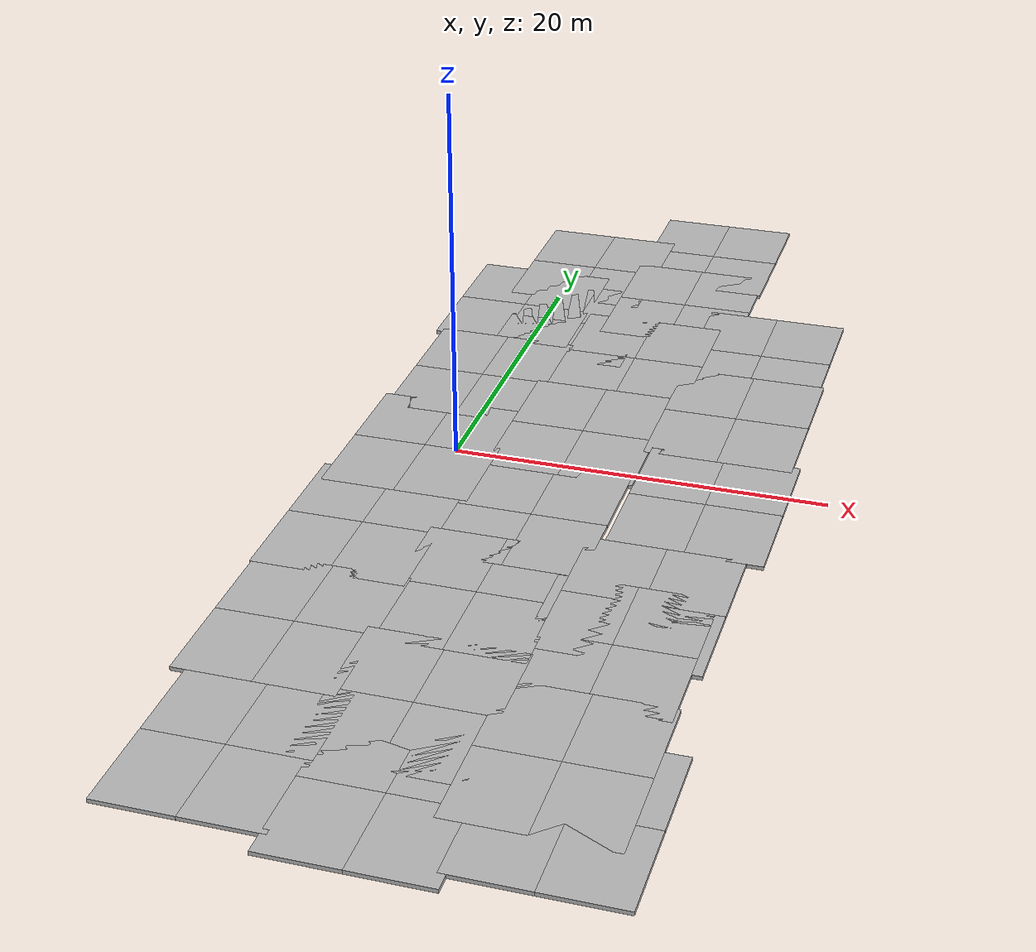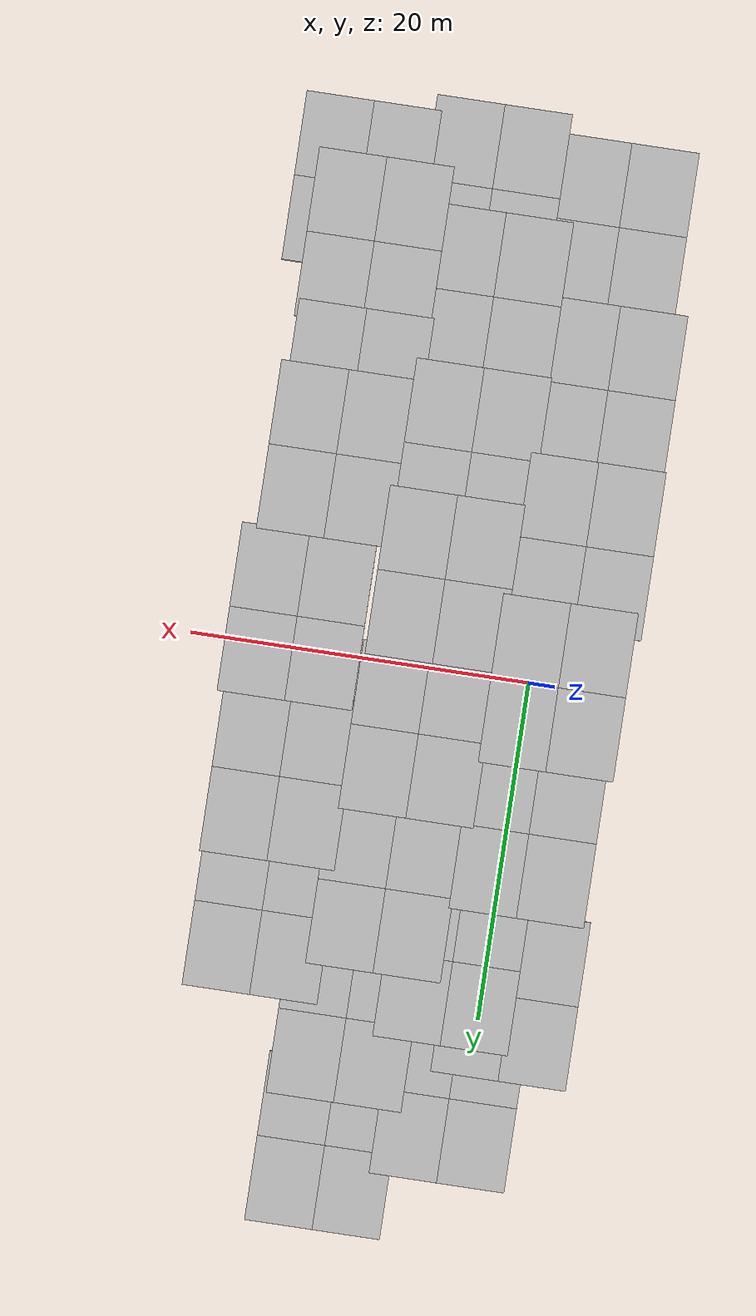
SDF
<sdf version="1.7">
 <world name="default">
  <model name="mud_box">
   <static>1</static>
   <link name="link">
    <collision name="collision"><geometry><box><size>8 10 0.2</size></box></geometry></collision>
    <visual name="visual_1">
     <pose>-2 2.5 0 0 -0 0</pose>
     <cast_shadows>0</cast_shadows>
     <geometry><box><size>4 5 0.2</size></box></geometry>
     <material>
      <script>
       <uri>model://mud_box/materials/scripts</uri>
       <uri>model://mud_box/materials/textures</uri>
       <name>vrc/mud</name>
      </script>
     </material>
    </visual>
    <visual name="visual_2">
     <pose>2 2.5 0 0 -0 0</pose>
     <cast_shadows>0</cast_shadows>
     <geometry><box><size>4 5 0.2</size></box></geometry>
     <material>
      <script>
       <uri>model://mud_box/materials/scripts</uri>
       <uri>model://mud_box/materials/textures</uri>
       <name>vrc/mud</name>
      </script>
     </material>
    </visual>
    <visual name="visual_3">
     <pose>2 -2.5 0 0 -0 0</pose>
     <cast_shadows>0</cast_shadows>
     <geometry><box><size>4 5 0.2</size></box></geometry>
     <material>
      <script>
       <uri>model://mud_box/materials/scripts</uri>
       <uri>model://mud_box/materials/textures</uri>
       <name>vrc/mud</name>
      </script>
     </material>
    </visual>
    <visual name="visual_4">
     <pose>-2 -2.5 0 0 -0 0</pose>
     <cast_shadows>0</cast_shadows>
     <geometry><box><size>4 5 0.2</size></box></geometry>
     <material>
      <script>
       <uri>model://mud_box/materials/scripts</uri>
       <uri>model://mud_box/materials/textures</uri>
       <name>vrc/mud</name>
      </script>
     </material>
    </visual>
   </link>
   <pose>-1.75984 0.012929 0 0 -0 0</pose>
  </model>
  <model name="mud_box_clone">
   <static>1</static>
   <link name="link">
    <collision name="collision"><geometry><box><size>8 10 0.2</size></box></geometry></collision>
    <visual name="visual_1">
     <pose>-2 2.5 0 0 -0 0</pose>
     <cast_shadows>0</cast_shadows>
     <geometry><box><size>4 5 0.2</size></box></geometry>
     <material>
      <script>
       <uri>model://mud_box/materials/scripts</uri>
       <uri>model://mud_box/materials/textures</uri>
       <name>vrc/mud</name>
      </script>
     </material>
    </visual>
    <visual name="visual_2">
     <pose>2 2.5 0 0 -0 0</pose>
     <cast_shadows>0</cast_shadows>
     <geometry><box><size>4 5 0.2</size></box></geometry>
     <material>
      <script>
       <uri>model://mud_box/materials/scripts</uri>
       <uri>model://mud_box/materials/textures</uri>
       <name>vrc/mud</name>
      </script>
     </material>
    </visual>
    <visual name="visual_3">
     <pose>2 -2.5 0 0 -0 0</pose>
     <cast_shadows>0</cast_shadows>
     <geometry><box><size>4 5 0.2</size></box></geometry>
     <material>
      <script>
       <uri>model://mud_box/materials/scripts</uri>
       <uri>model://mud_box/materials/textures</uri>
       <name>vrc/mud</name>
      </script>
     </material>
    </visual>
    <visual name="visual_4">
     <pose>-2 -2.5 0 0 -0 0</pose>
     <cast_shadows>0</cast_shadows>
     <geometry><box><size>4 5 0.2</size></box></geometry>
     <material>
      <script>
       <uri>model://mud_box/materials/scripts</uri>
       <uri>model://mud_box/materials/textures</uri>
       <name>vrc/mud</name>
      </script>
     </material>
    </visual>
   </link>
   <pose>5.75179 -5.2884 0 0 -0 0</pose>
  </model>
  <model name="mud_box_clone_0">
   <static>1</static>
   <link name="link">
    <collision name="collision"><geometry><box><size>8 10 0.2</size></box></geometry></collision>
    <visual name="visual_1">
     <pose>-2 2.5 0 0 -0 0</pose>
     <cast_shadows>0</cast_shadows>
     <geometry><box><size>4 5 0.2</size></box></geometry>
     <material>
      <script>
       <uri>model://mud_box/materials/scripts</uri>
       <uri>model://mud_box/materials/textures</uri>
       <name>vrc/mud</name>
      </script>
     </material>
    </visual>
    <visual name="visual_2">
     <pose>2 2.5 0 0 -0 0</pose>
     <cast_shadows>0</cast_shadows>
     <geometry><box><size>4 5 0.2</size></box></geometry>
     <material>
      <script>
       <uri>model://mud_box/materials/scripts</uri>
       <uri>model://mud_box/materials/textures</uri>
       <name>vrc/mud</name>
      </script>
     </material>
    </visual>
    <visual name="visual_3">
     <pose>2 -2.5 0 0 -0 0</pose>
     <cast_shadows>0</cast_shadows>
     <geometry><box><size>4 5 0.2</size></box></geometry>
     <material>
      <script>
       <uri>model://mud_box/materials/scripts</uri>
       <uri>model://mud_box/materials/textures</uri>
       <name>vrc/mud</name>
      </script>
     </material>
    </visual>
    <visual name="visual_4">
     <pose>-2 -2.5 0 0 -0 0</pose>
     <cast_shadows>0</cast_shadows>
     <geometry><box><size>4 5 0.2</size></box></geometry>
     <material>
      <script>
       <uri>model://mud_box/materials/scripts</uri>
       <uri>model://mud_box/materials/textures</uri>
       <name>vrc/mud</name>
      </script>
     </material>
    </visual>
   </link>
   <pose>-2.14774 -8.41393 0 0 -0 0</pose>
  </model>
  <model name="mud_box_clone_1">
   <static>1</static>
   <link name="link">
    <collision name="collision"><geometry><box><size>8 10 0.2</size></box></geometry></collision>
    <visual name="visual_1">
     <pose>-2 2.5 0 0 -0 0</pose>
     <cast_shadows>0</cast_shadows>
     <geometry><box><size>4 5 0.2</size></box></geometry>
     <material>
      <script>
       <uri>model://mud_box/materials/scripts</uri>
       <uri>model://mud_box/materials/textures</uri>
       <name>vrc/mud</name>
      </script>
     </material>
    </visual>
    <visual name="visual_2">
     <pose>2 2.5 0 0 -0 0</pose>
     <cast_shadows>0</cast_shadows>
     <geometry><box><size>4 5 0.2</size></box></geometry>
     <material>
      <script>
       <uri>model://mud_box/materials/scripts</uri>
       <uri>model://mud_box/materials/textures</uri>
       <name>vrc/mud</name>
      </script>
     </material>
    </visual>
    <visual name="visual_3">
     <pose>2 -2.5 0 0 -0 0</pose>
     <cast_shadows>0</cast_shadows>
     <geometry><box><size>4 5 0.2</size></box></geometry>
     <material>
      <script>
       <uri>model://mud_box/materials/scripts</uri>
       <uri>model://mud_box/materials/textures</uri>
       <name>vrc/mud</name>
      </script>
     </material>
    </visual>
    <visual name="visual_4">
     <pose>-2 -2.5 0 0 -0 0</pose>
     <cast_shadows>0</cast_shadows>
     <geometry><box><size>4 5 0.2</size></box></geometry>
     <material>
      <script>
       <uri>model://mud_box/materials/scripts</uri>
       <uri>model://mud_box/materials/textures</uri>
       <name>vrc/mud</name>
      </script>
     </material>
    </visual>
   </link>
   <pose>5.95013 3.90898 0 0 -0 0</pose>
  </model>
  <model name="mud_box_clone_2">
   <static>1</static>
   <link name="link">
    <collision name="collision"><geometry><box><size>8 10 0.2</size></box></geometry></collision>
    <visual name="visual_1">
     <pose>-2 2.5 0 0 -0 0</pose>
     <cast_shadows>0</cast_shadows>
     <geometry><box><size>4 5 0.2</size></box></geometry>
     <material>
      <script>
       <uri>model://mud_box/materials/scripts</uri>
       <uri>model://mud_box/materials/textures</uri>
       <name>vrc/mud</name>
      </script>
     </material>
    </visual>
    <visual name="visual_2">
     <pose>2 2.5 0 0 -0 0</pose>
     <cast_shadows>0</cast_shadows>
     <geometry><box><size>4 5 0.2</size></box></geometry>
     <material>
      <script>
       <uri>model://mud_box/materials/scripts</uri>
       <uri>model://mud_box/materials/textures</uri>
       <name>vrc/mud</name>
      </script>
     </material>
    </visual>
    <visual name="visual_3">
     <pose>2 -2.5 0 0 -0 0</pose>
     <cast_shadows>0</cast_shadows>
     <geometry><box><size>4 5 0.2</size></box></geometry>
     <material>
      <script>
       <uri>model://mud_box/materials/scripts</uri>
       <uri>model://mud_box/materials/textures</uri>
       <name>vrc/mud</name>
      </script>
     </material>
    </visual>
    <visual name="visual_4">
     <pose>-2 -2.5 0 0 -0 0</pose>
     <cast_shadows>0</cast_shadows>
     <geometry><box><size>4 5 0.2</size></box></geometry>
     <material>
      <script>
       <uri>model://mud_box/materials/scripts</uri>
       <uri>model://mud_box/materials/textures</uri>
       <name>vrc/mud</name>
      </script>
     </material>
    </visual>
   </link>
   <pose>-1.33272 8.75434 0 0 -0 0</pose>
  </model>
  <model name="mud_box_clone_3">
   <static>1</static>
   <link name="link">
    <collision name="collision"><geometry><box><size>8 10 0.2</size></box></geometry></collision>
    <visual name="visual_1">
     <pose>-2 2.5 0 0 -0 0</pose>
     <cast_shadows>0</cast_shadows>
     <geometry><box><size>4 5 0.2</size></box></geometry>
     <material>
      <script>
       <uri>model://mud_box/materials/scripts</uri>
       <uri>model://mud_box/materials/textures</uri>
       <name>vrc/mud</name>
      </script>
     </material>
    </visual>
    <visual name="visual_2">
     <pose>2 2.5 0 0 -0 0</pose>
     <cast_shadows>0</cast_shadows>
     <geometry><box><size>4 5 0.2</size></box></geometry>
     <material>
      <script>
       <uri>model://mud_box/materials/scripts</uri>
       <uri>model://mud_box/materials/textures</uri>
       <name>vrc/mud</name>
      </script>
     </material>
    </visual>
    <visual name="visual_3">
     <pose>2 -2.5 0 0 -0 0</pose>
     <cast_shadows>0</cast_shadows>
     <geometry><box><size>4 5 0.2</size></box></geometry>
     <material>
      <script>
       <uri>model://mud_box/materials/scripts</uri>
       <uri>model://mud_box/materials/textures</uri>
       <name>vrc/mud</name>
      </script>
     </material>
    </visual>
    <visual name="visual_4">
     <pose>-2 -2.5 0 0 -0 0</pose>
     <cast_shadows>0</cast_shadows>
     <geometry><box><size>4 5 0.2</size></box></geometry>
     <material>
      <script>
       <uri>model://mud_box/materials/scripts</uri>
       <uri>model://mud_box/materials/textures</uri>
       <name>vrc/mud</name>
      </script>
     </material>
    </visual>
   </link>
   <pose>5.3204 -12.9035 0 0 -0 0</pose>
  </model>
  <model name="mud_box_clone_4">
   <static>1</static>
   <link name="link">
    <collision name="collision"><geometry><box><size>8 10 0.2</size></box></geometry></collision>
    <visual name="visual_1">
     <pose>-2 2.5 0 0 -0 0</pose>
     <cast_shadows>0</cast_shadows>
     <geometry><box><size>4 5 0.2</size></box></geometry>
     <material>
      <script>
       <uri>model://mud_box/materials/scripts</uri>
       <uri>model://mud_box/materials/textures</uri>
       <name>vrc/mud</name>
      </script>
     </material>
    </visual>
    <visual name="visual_2">
     <pose>2 2.5 0 0 -0 0</pose>
     <cast_shadows>0</cast_shadows>
     <geometry><box><size>4 5 0.2</size></box></geometry>
     <material>
      <script>
       <uri>model://mud_box/materials/scripts</uri>
       <uri>model://mud_box/materials/textures</uri>
       <name>vrc/mud</name>
      </script>
     </material>
    </visual>
    <visual name="visual_3">
     <pose>2 -2.5 0 0 -0 0</pose>
     <cast_shadows>0</cast_shadows>
     <geometry><box><size>4 5 0.2</size></box></geometry>
     <material>
      <script>
       <uri>model://mud_box/materials/scripts</uri>
       <uri>model://mud_box/materials/textures</uri>
       <name>vrc/mud</name>
      </script>
     </material>
    </visual>
    <visual name="visual_4">
     <pose>-2 -2.5 0 0 -0 0</pose>
     <cast_shadows>0</cast_shadows>
     <geometry><box><size>4 5 0.2</size></box></geometry>
     <material>
      <script>
       <uri>model://mud_box/materials/scripts</uri>
       <uri>model://mud_box/materials/textures</uri>
       <name>vrc/mud</name>
      </script>
     </material>
    </visual>
   </link>
   <pose>13.1524 -11.6244 0 0 -0 0</pose>
  </model>
  <model name="mud_box_clone_10">
   <static>1</static>
   <link name="link">
    <collision name="collision"><geometry><box><size>8 10 0.2</size></box></geometry></collision>
    <visual name="visual_1">
     <pose>-2 2.5 0 0 -0 0</pose>
     <cast_shadows>0</cast_shadows>
     <geometry><box><size>4 5 0.2</size></box></geometry>
     <material>
      <script>
       <uri>model://mud_box/materials/scripts</uri>
       <uri>model://mud_box/materials/textures</uri>
       <name>vrc/mud</name>
      </script>
     </material>
    </visual>
    <visual name="visual_2">
     <pose>2 2.5 0 0 -0 0</pose>
     <cast_shadows>0</cast_shadows>
     <geometry><box><size>4 5 0.2</size></box></geometry>
     <material>
      <script>
       <uri>model://mud_box/materials/scripts</uri>
       <uri>model://mud_box/materials/textures</uri>
       <name>vrc/mud</name>
      </script>
     </material>
    </visual>
    <visual name="visual_3">
     <pose>2 -2.5 0 0 -0 0</pose>
     <cast_shadows>0</cast_shadows>
     <geometry><box><size>4 5 0.2</size></box></geometry>
     <material>
      <script>
       <uri>model://mud_box/materials/scripts</uri>
       <uri>model://mud_box/materials/textures</uri>
       <name>vrc/mud</name>
      </script>
     </material>
    </visual>
    <visual name="visual_4">
     <pose>-2 -2.5 0 0 -0 0</pose>
     <cast_shadows>0</cast_shadows>
     <geometry><box><size>4 5 0.2</size></box></geometry>
     <material>
      <script>
       <uri>model://mud_box/materials/scripts</uri>
       <uri>model://mud_box/materials/textures</uri>
       <name>vrc/mud</name>
      </script>
     </material>
    </visual>
   </link>
   <pose>14.0105 -1.86425 0 0 -0 0</pose>
  </model>
  <model name="mud_box_clone_11">
   <static>1</static>
   <link name="link">
    <collision name="collision"><geometry><box><size>8 10 0.2</size></box></geometry></collision>
    <visual name="visual_1">
     <pose>-2 2.5 0 0 -0 0</pose>
     <cast_shadows>0</cast_shadows>
     <geometry><box><size>4 5 0.2</size></box></geometry>
     <material>
      <script>
       <uri>model://mud_box/materials/scripts</uri>
       <uri>model://mud_box/materials/textures</uri>
       <name>vrc/mud</name>
      </script>
     </material>
    </visual>
    <visual name="visual_2">
     <pose>2 2.5 0 0 -0 0</pose>
     <cast_shadows>0</cast_shadows>
     <geometry><box><size>4 5 0.2</size></box></geometry>
     <material>
      <script>
       <uri>model://mud_box/materials/scripts</uri>
       <uri>model://mud_box/materials/textures</uri>
       <name>vrc/mud</name>
      </script>
     </material>
    </visual>
    <visual name="visual_3">
     <pose>2 -2.5 0 0 -0 0</pose>
     <cast_shadows>0</cast_shadows>
     <geometry><box><size>4 5 0.2</size></box></geometry>
     <material>
      <script>
       <uri>model://mud_box/materials/scripts</uri>
       <uri>model://mud_box/materials/textures</uri>
       <name>vrc/mud</name>
      </script>
     </material>
    </visual>
    <visual name="visual_4">
     <pose>-2 -2.5 0 0 -0 0</pose>
     <cast_shadows>0</cast_shadows>
     <geometry><box><size>4 5 0.2</size></box></geometry>
     <material>
      <script>
       <uri>model://mud_box/materials/scripts</uri>
       <uri>model://mud_box/materials/textures</uri>
       <name>vrc/mud</name>
      </script>
     </material>
    </visual>
   </link>
   <pose>13.6359 7.58583 0 0 -0 0</pose>
  </model>
  <model name="mud_box_clone_12">
   <static>1</static>
   <link name="link">
    <collision name="collision"><geometry><box><size>8 10 0.2</size></box></geometry></collision>
    <visual name="visual_1">
     <pose>-2 2.5 0 0 -0 0</pose>
     <cast_shadows>0</cast_shadows>
     <geometry><box><size>4 5 0.2</size></box></geometry>
     <material>
      <script>
       <uri>model://mud_box/materials/scripts</uri>
       <uri>model://mud_box/materials/textures</uri>
       <name>vrc/mud</name>
      </script>
     </material>
    </visual>
    <visual name="visual_2">
     <pose>2 2.5 0 0 -0 0</pose>
     <cast_shadows>0</cast_shadows>
     <geometry><box><size>4 5 0.2</size></box></geometry>
     <material>
      <script>
       <uri>model://mud_box/materials/scripts</uri>
       <uri>model://mud_box/materials/textures</uri>
       <name>vrc/mud</name>
      </script>
     </material>
    </visual>
    <visual name="visual_3">
     <pose>2 -2.5 0 0 -0 0</pose>
     <cast_shadows>0</cast_shadows>
     <geometry><box><size>4 5 0.2</size></box></geometry>
     <material>
      <script>
       <uri>model://mud_box/materials/scripts</uri>
       <uri>model://mud_box/materials/textures</uri>
       <name>vrc/mud</name>
      </script>
     </material>
    </visual>
    <visual name="visual_4">
     <pose>-2 -2.5 0 0 -0 0</pose>
     <cast_shadows>0</cast_shadows>
     <geometry><box><size>4 5 0.2</size></box></geometry>
     <material>
      <script>
       <uri>model://mud_box/materials/scripts</uri>
       <uri>model://mud_box/materials/textures</uri>
       <name>vrc/mud</name>
      </script>
     </material>
    </visual>
   </link>
   <pose>6.50548 13.1761 0 0 -0 0</pose>
  </model>
  <model name="mud_box_clone_51">
   <static>1</static>
   <link name="link">
    <collision name="collision"><geometry><box><size>8 10 0.2</size></box></geometry></collision>
    <visual name="visual_1">
     <pose>-2 2.5 0 0 -0 0</pose>
     <cast_shadows>0</cast_shadows>
     <geometry><box><size>4 5 0.2</size></box></geometry>
     <material>
      <script>
       <uri>model://mud_box/materials/scripts</uri>
       <uri>model://mud_box/materials/textures</uri>
       <name>vrc/mud</name>
      </script>
     </material>
    </visual>
    <visual name="visual_2">
     <pose>2 2.5 0 0 -0 0</pose>
     <cast_shadows>0</cast_shadows>
     <geometry><box><size>4 5 0.2</size></box></geometry>
     <material>
      <script>
       <uri>model://mud_box/materials/scripts</uri>
       <uri>model://mud_box/materials/textures</uri>
       <name>vrc/mud</name>
      </script>
     </material>
    </visual>
    <visual name="visual_3">
     <pose>2 -2.5 0 0 -0 0</pose>
     <cast_shadows>0</cast_shadows>
     <geometry><box><size>4 5 0.2</size></box></geometry>
     <material>
      <script>
       <uri>model://mud_box/materials/scripts</uri>
       <uri>model://mud_box/materials/textures</uri>
       <name>vrc/mud</name>
      </script>
     </material>
    </visual>
    <visual name="visual_4">
     <pose>-2 -2.5 0 0 -0 0</pose>
     <cast_shadows>0</cast_shadows>
     <geometry><box><size>4 5 0.2</size></box></geometry>
     <material>
      <script>
       <uri>model://mud_box/materials/scripts</uri>
       <uri>model://mud_box/materials/textures</uri>
       <name>vrc/mud</name>
      </script>
     </material>
    </visual>
   </link>
   <pose>12.6534 -15.3278 0 0 -0 0</pose>
  </model>
  <model name="mud_box_clone_42_clone">
   <static>1</static>
   <link name="link">
    <collision name="collision"><geometry><box><size>8 10 0.2</size></box></geometry></collision>
    <visual name="visual_1">
     <pose>-2 2.5 0 0 -0 0</pose>
     <cast_shadows>0</cast_shadows>
     <geometry><box><size>4 5 0.2</size></box></geometry>
     <material>
      <script>
       <uri>model://mud_box/materials/scripts</uri>
       <uri>model://mud_box/materials/textures</uri>
       <name>vrc/mud</name>
      </script>
     </material>
    </visual>
    <visual name="visual_2">
     <pose>2 2.5 0 0 -0 0</pose>
     <cast_shadows>0</cast_shadows>
     <geometry><box><size>4 5 0.2</size></box></geometry>
     <material>
      <script>
       <uri>model://mud_box/materials/scripts</uri>
       <uri>model://mud_box/materials/textures</uri>
       <name>vrc/mud</name>
      </script>
     </material>
    </visual>
    <visual name="visual_3">
     <pose>2 -2.5 0 0 -0 0</pose>
     <cast_shadows>0</cast_shadows>
     <geometry><box><size>4 5 0.2</size></box></geometry>
     <material>
      <script>
       <uri>model://mud_box/materials/scripts</uri>
       <uri>model://mud_box/materials/textures</uri>
       <name>vrc/mud</name>
      </script>
     </material>
    </visual>
    <visual name="visual_4">
     <pose>-2 -2.5 0 0 -0 0</pose>
     <cast_shadows>0</cast_shadows>
     <geometry><box><size>4 5 0.2</size></box></geometry>
     <material>
      <script>
       <uri>model://mud_box/materials/scripts</uri>
       <uri>model://mud_box/materials/textures</uri>
       <name>vrc/mud</name>
      </script>
     </material>
    </visual>
   </link>
   <pose>12.8079 -24.2944 0 0 -0 0</pose>
  </model>
  <model name="mud_box_clone_42_clone_0">
   <static>1</static>
   <link name="link">
    <collision name="collision"><geometry><box><size>8 10 0.2</size></box></geometry></collision>
    <visual name="visual_1">
     <pose>-2 2.5 0 0 -0 0</pose>
     <cast_shadows>0</cast_shadows>
     <geometry><box><size>4 5 0.2</size></box></geometry>
     <material>
      <script>
       <uri>model://mud_box/materials/scripts</uri>
       <uri>model://mud_box/materials/textures</uri>
       <name>vrc/mud</name>
      </script>
     </material>
    </visual>
    <visual name="visual_2">
     <pose>2 2.5 0 0 -0 0</pose>
     <cast_shadows>0</cast_shadows>
     <geometry><box><size>4 5 0.2</size></box></geometry>
     <material>
      <script>
       <uri>model://mud_box/materials/scripts</uri>
       <uri>model://mud_box/materials/textures</uri>
       <name>vrc/mud</name>
      </script>
     </material>
    </visual>
    <visual name="visual_3">
     <pose>2 -2.5 0 0 -0 0</pose>
     <cast_shadows>0</cast_shadows>
     <geometry><box><size>4 5 0.2</size></box></geometry>
     <material>
      <script>
       <uri>model://mud_box/materials/scripts</uri>
       <uri>model://mud_box/materials/textures</uri>
       <name>vrc/mud</name>
      </script>
     </material>
    </visual>
    <visual name="visual_4">
     <pose>-2 -2.5 0 0 -0 0</pose>
     <cast_shadows>0</cast_shadows>
     <geometry><box><size>4 5 0.2</size></box></geometry>
     <material>
      <script>
       <uri>model://mud_box/materials/scripts</uri>
       <uri>model://mud_box/materials/textures</uri>
       <name>vrc/mud</name>
      </script>
     </material>
    </visual>
   </link>
   <pose>14.026 -27.4486 0 0 -0 0</pose>
  </model>
  <model name="mud_box_clone_42_clone_1">
   <static>1</static>
   <link name="link">
    <collision name="collision"><geometry><box><size>8 10 0.2</size></box></geometry></collision>
    <visual name="visual_1">
     <pose>-2 2.5 0 0 -0 0</pose>
     <cast_shadows>0</cast_shadows>
     <geometry><box><size>4 5 0.2</size></box></geometry>
     <material>
      <script>
       <uri>model://mud_box/materials/scripts</uri>
       <uri>model://mud_box/materials/textures</uri>
       <name>vrc/mud</name>
      </script>
     </material>
    </visual>
    <visual name="visual_2">
     <pose>2 2.5 0 0 -0 0</pose>
     <cast_shadows>0</cast_shadows>
     <geometry><box><size>4 5 0.2</size></box></geometry>
     <material>
      <script>
       <uri>model://mud_box/materials/scripts</uri>
       <uri>model://mud_box/materials/textures</uri>
       <name>vrc/mud</name>
      </script>
     </material>
    </visual>
    <visual name="visual_3">
     <pose>2 -2.5 0 0 -0 0</pose>
     <cast_shadows>0</cast_shadows>
     <geometry><box><size>4 5 0.2</size></box></geometry>
     <material>
      <script>
       <uri>model://mud_box/materials/scripts</uri>
       <uri>model://mud_box/materials/textures</uri>
       <name>vrc/mud</name>
      </script>
     </material>
    </visual>
    <visual name="visual_4">
     <pose>-2 -2.5 0 0 -0 0</pose>
     <cast_shadows>0</cast_shadows>
     <geometry><box><size>4 5 0.2</size></box></geometry>
     <material>
      <script>
       <uri>model://mud_box/materials/scripts</uri>
       <uri>model://mud_box/materials/textures</uri>
       <name>vrc/mud</name>
      </script>
     </material>
    </visual>
   </link>
   <pose>5.40067 -22.097 0 0 -0 0</pose>
  </model>
  <model name="mud_box_clone_42_clone_2">
   <static>1</static>
   <link name="link">
    <collision name="collision"><geometry><box><size>8 10 0.2</size></box></geometry></collision>
    <visual name="visual_1">
     <pose>-2 2.5 0 0 -0 0</pose>
     <cast_shadows>0</cast_shadows>
     <geometry><box><size>4 5 0.2</size></box></geometry>
     <material>
      <script>
       <uri>model://mud_box/materials/scripts</uri>
       <uri>model://mud_box/materials/textures</uri>
       <name>vrc/mud</name>
      </script>
     </material>
    </visual>
    <visual name="visual_2">
     <pose>2 2.5 0 0 -0 0</pose>
     <cast_shadows>0</cast_shadows>
     <geometry><box><size>4 5 0.2</size></box></geometry>
     <material>
      <script>
       <uri>model://mud_box/materials/scripts</uri>
       <uri>model://mud_box/materials/textures</uri>
       <name>vrc/mud</name>
      </script>
     </material>
    </visual>
    <visual name="visual_3">
     <pose>2 -2.5 0 0 -0 0</pose>
     <cast_shadows>0</cast_shadows>
     <geometry><box><size>4 5 0.2</size></box></geometry>
     <material>
      <script>
       <uri>model://mud_box/materials/scripts</uri>
       <uri>model://mud_box/materials/textures</uri>
       <name>vrc/mud</name>
      </script>
     </material>
    </visual>
    <visual name="visual_4">
     <pose>-2 -2.5 0 0 -0 0</pose>
     <cast_shadows>0</cast_shadows>
     <geometry><box><size>4 5 0.2</size></box></geometry>
     <material>
      <script>
       <uri>model://mud_box/materials/scripts</uri>
       <uri>model://mud_box/materials/textures</uri>
       <name>vrc/mud</name>
      </script>
     </material>
    </visual>
   </link>
   <pose>6.4144 -28.3622 0 0 -0 0</pose>
  </model>
  <model name="mud_box_clone_42_clone_3">
   <static>1</static>
   <link name="link">
    <collision name="collision"><geometry><box><size>8 10 0.2</size></box></geometry></collision>
    <visual name="visual_1">
     <pose>-2 2.5 0 0 -0 0</pose>
     <cast_shadows>0</cast_shadows>
     <geometry><box><size>4 5 0.2</size></box></geometry>
     <material>
      <script>
       <uri>model://mud_box/materials/scripts</uri>
       <uri>model://mud_box/materials/textures</uri>
       <name>vrc/mud</name>
      </script>
     </material>
    </visual>
    <visual name="visual_2">
     <pose>2 2.5 0 0 -0 0</pose>
     <cast_shadows>0</cast_shadows>
     <geometry><box><size>4 5 0.2</size></box></geometry>
     <material>
      <script>
       <uri>model://mud_box/materials/scripts</uri>
       <uri>model://mud_box/materials/textures</uri>
       <name>vrc/mud</name>
      </script>
     </material>
    </visual>
    <visual name="visual_3">
     <pose>2 -2.5 0 0 -0 0</pose>
     <cast_shadows>0</cast_shadows>
     <geometry><box><size>4 5 0.2</size></box></geometry>
     <material>
      <script>
       <uri>model://mud_box/materials/scripts</uri>
       <uri>model://mud_box/materials/textures</uri>
       <name>vrc/mud</name>
      </script>
     </material>
    </visual>
    <visual name="visual_4">
     <pose>-2 -2.5 0 0 -0 0</pose>
     <cast_shadows>0</cast_shadows>
     <geometry><box><size>4 5 0.2</size></box></geometry>
     <material>
      <script>
       <uri>model://mud_box/materials/scripts</uri>
       <uri>model://mud_box/materials/textures</uri>
       <name>vrc/mud</name>
      </script>
     </material>
    </visual>
   </link>
   <pose>-2.04468 -17.6694 0 0 -0 0</pose>
  </model>
  <model name="mud_box_clone_42_clone_4">
   <static>1</static>
   <link name="link">
    <collision name="collision"><geometry><box><size>8 10 0.2</size></box></geometry></collision>
    <visual name="visual_1">
     <pose>-2 2.5 0 0 -0 0</pose>
     <cast_shadows>0</cast_shadows>
     <geometry><box><size>4 5 0.2</size></box></geometry>
     <material>
      <script>
       <uri>model://mud_box/materials/scripts</uri>
       <uri>model://mud_box/materials/textures</uri>
       <name>vrc/mud</name>
      </script>
     </material>
    </visual>
    <visual name="visual_2">
     <pose>2 2.5 0 0 -0 0</pose>
     <cast_shadows>0</cast_shadows>
     <geometry><box><size>4 5 0.2</size></box></geometry>
     <material>
      <script>
       <uri>model://mud_box/materials/scripts</uri>
       <uri>model://mud_box/materials/textures</uri>
       <name>vrc/mud</name>
      </script>
     </material>
    </visual>
    <visual name="visual_3">
     <pose>2 -2.5 0 0 -0 0</pose>
     <cast_shadows>0</cast_shadows>
     <geometry><box><size>4 5 0.2</size></box></geometry>
     <material>
      <script>
       <uri>model://mud_box/materials/scripts</uri>
       <uri>model://mud_box/materials/textures</uri>
       <name>vrc/mud</name>
      </script>
     </material>
    </visual>
    <visual name="visual_4">
     <pose>-2 -2.5 0 0 -0 0</pose>
     <cast_shadows>0</cast_shadows>
     <geometry><box><size>4 5 0.2</size></box></geometry>
     <material>
      <script>
       <uri>model://mud_box/materials/scripts</uri>
       <uri>model://mud_box/materials/textures</uri>
       <name>vrc/mud</name>
      </script>
     </material>
    </visual>
   </link>
   <pose>-1.28087 -27.219 0 0 -0 0</pose>
  </model>
  <model name="mud_box_clone_42_clone_5">
   <static>1</static>
   <link name="link">
    <collision name="collision"><geometry><box><size>8 10 0.2</size></box></geometry></collision>
    <visual name="visual_1">
     <pose>-2 2.5 0 0 -0 0</pose>
     <cast_shadows>0</cast_shadows>
     <geometry><box><size>4 5 0.2</size></box></geometry>
     <material>
      <script>
       <uri>model://mud_box/materials/scripts</uri>
       <uri>model://mud_box/materials/textures</uri>
       <name>vrc/mud</name>
      </script>
     </material>
    </visual>
    <visual name="visual_2">
     <pose>2 2.5 0 0 -0 0</pose>
     <cast_shadows>0</cast_shadows>
     <geometry><box><size>4 5 0.2</size></box></geometry>
     <material>
      <script>
       <uri>model://mud_box/materials/scripts</uri>
       <uri>model://mud_box/materials/textures</uri>
       <name>vrc/mud</name>
      </script>
     </material>
    </visual>
    <visual name="visual_3">
     <pose>2 -2.5 0 0 -0 0</pose>
     <cast_shadows>0</cast_shadows>
     <geometry><box><size>4 5 0.2</size></box></geometry>
     <material>
      <script>
       <uri>model://mud_box/materials/scripts</uri>
       <uri>model://mud_box/materials/textures</uri>
       <name>vrc/mud</name>
      </script>
     </material>
    </visual>
    <visual name="visual_4">
     <pose>-2 -2.5 0 0 -0 0</pose>
     <cast_shadows>0</cast_shadows>
     <geometry><box><size>4 5 0.2</size></box></geometry>
     <material>
      <script>
       <uri>model://mud_box/materials/scripts</uri>
       <uri>model://mud_box/materials/textures</uri>
       <name>vrc/mud</name>
      </script>
     </material>
    </visual>
   </link>
   <pose>13.4736 15.5005 0 0 -0 0</pose>
  </model>
  <model name="mud_box_clone_42_clone_6">
   <static>1</static>
   <link name="link">
    <collision name="collision"><geometry><box><size>8 10 0.2</size></box></geometry></collision>
    <visual name="visual_1">
     <pose>-2 2.5 0 0 -0 0</pose>
     <cast_shadows>0</cast_shadows>
     <geometry><box><size>4 5 0.2</size></box></geometry>
     <material>
      <script>
       <uri>model://mud_box/materials/scripts</uri>
       <uri>model://mud_box/materials/textures</uri>
       <name>vrc/mud</name>
      </script>
     </material>
    </visual>
    <visual name="visual_2">
     <pose>2 2.5 0 0 -0 0</pose>
     <cast_shadows>0</cast_shadows>
     <geometry><box><size>4 5 0.2</size></box></geometry>
     <material>
      <script>
       <uri>model://mud_box/materials/scripts</uri>
       <uri>model://mud_box/materials/textures</uri>
       <name>vrc/mud</name>
      </script>
     </material>
    </visual>
    <visual name="visual_3">
     <pose>2 -2.5 0 0 -0 0</pose>
     <cast_shadows>0</cast_shadows>
     <geometry><box><size>4 5 0.2</size></box></geometry>
     <material>
      <script>
       <uri>model://mud_box/materials/scripts</uri>
       <uri>model://mud_box/materials/textures</uri>
       <name>vrc/mud</name>
      </script>
     </material>
    </visual>
    <visual name="visual_4">
     <pose>-2 -2.5 0 0 -0 0</pose>
     <cast_shadows>0</cast_shadows>
     <geometry><box><size>4 5 0.2</size></box></geometry>
     <material>
      <script>
       <uri>model://mud_box/materials/scripts</uri>
       <uri>model://mud_box/materials/textures</uri>
       <name>vrc/mud</name>
      </script>
     </material>
    </visual>
   </link>
   <pose>1.97236 16.8179 0 0 -0 0</pose>
  </model>
  <model name="mud_box_clone_42_clone_7">
   <static>1</static>
   <link name="link">
    <collision name="collision"><geometry><box><size>8 10 0.2</size></box></geometry></collision>
    <visual name="visual_1">
     <pose>-2 2.5 0 0 -0 0</pose>
     <cast_shadows>0</cast_shadows>
     <geometry><box><size>4 5 0.2</size></box></geometry>
     <material>
      <script>
       <uri>model://mud_box/materials/scripts</uri>
       <uri>model://mud_box/materials/textures</uri>
       <name>vrc/mud</name>
      </script>
     </material>
    </visual>
    <visual name="visual_2">
     <pose>2 2.5 0 0 -0 0</pose>
     <cast_shadows>0</cast_shadows>
     <geometry><box><size>4 5 0.2</size></box></geometry>
     <material>
      <script>
       <uri>model://mud_box/materials/scripts</uri>
       <uri>model://mud_box/materials/textures</uri>
       <name>vrc/mud</name>
      </script>
     </material>
    </visual>
    <visual name="visual_3">
     <pose>2 -2.5 0 0 -0 0</pose>
     <cast_shadows>0</cast_shadows>
     <geometry><box><size>4 5 0.2</size></box></geometry>
     <material>
      <script>
       <uri>model://mud_box/materials/scripts</uri>
       <uri>model://mud_box/materials/textures</uri>
       <name>vrc/mud</name>
      </script>
     </material>
    </visual>
    <visual name="visual_4">
     <pose>-2 -2.5 0 0 -0 0</pose>
     <cast_shadows>0</cast_shadows>
     <geometry><box><size>4 5 0.2</size></box></geometry>
     <material>
      <script>
       <uri>model://mud_box/materials/scripts</uri>
       <uri>model://mud_box/materials/textures</uri>
       <name>vrc/mud</name>
      </script>
     </material>
    </visual>
   </link>
   <pose>7.65955 21.0278 0 0 -0 0</pose>
  </model>
  <model name="mud_box_clone_42_clone_9">
   <static>1</static>
   <link name="link">
    <collision name="collision"><geometry><box><size>8 10 0.2</size></box></geometry></collision>
    <visual name="visual_1">
     <pose>-2 2.5 0 0 -0 0</pose>
     <cast_shadows>0</cast_shadows>
     <geometry><box><size>4 5 0.2</size></box></geometry>
     <material>
      <script>
       <uri>model://mud_box/materials/scripts</uri>
       <uri>model://mud_box/materials/textures</uri>
       <name>vrc/mud</name>
      </script>
     </material>
    </visual>
    <visual name="visual_2">
     <pose>2 2.5 0 0 -0 0</pose>
     <cast_shadows>0</cast_shadows>
     <geometry><box><size>4 5 0.2</size></box></geometry>
     <material>
      <script>
       <uri>model://mud_box/materials/scripts</uri>
       <uri>model://mud_box/materials/textures</uri>
       <name>vrc/mud</name>
      </script>
     </material>
    </visual>
    <visual name="visual_3">
     <pose>2 -2.5 0 0 -0 0</pose>
     <cast_shadows>0</cast_shadows>
     <geometry><box><size>4 5 0.2</size></box></geometry>
     <material>
      <script>
       <uri>model://mud_box/materials/scripts</uri>
       <uri>model://mud_box/materials/textures</uri>
       <name>vrc/mud</name>
      </script>
     </material>
    </visual>
    <visual name="visual_4">
     <pose>-2 -2.5 0 0 -0 0</pose>
     <cast_shadows>0</cast_shadows>
     <geometry><box><size>4 5 0.2</size></box></geometry>
     <material>
      <script>
       <uri>model://mud_box/materials/scripts</uri>
       <uri>model://mud_box/materials/textures</uri>
       <name>vrc/mud</name>
      </script>
     </material>
    </visual>
   </link>
   <pose>-1.69492 18.366 0 0 -0 0</pose>
  </model>
  <model name="mud_box_clone_42_clone_10">
   <static>1</static>
   <link name="link">
    <collision name="collision"><geometry><box><size>8 10 0.2</size></box></geometry></collision>
    <visual name="visual_1">
     <pose>-2 2.5 0 0 -0 0</pose>
     <cast_shadows>0</cast_shadows>
     <geometry><box><size>4 5 0.2</size></box></geometry>
     <material>
      <script>
       <uri>model://mud_box/materials/scripts</uri>
       <uri>model://mud_box/materials/textures</uri>
       <name>vrc/mud</name>
      </script>
     </material>
    </visual>
    <visual name="visual_2">
     <pose>2 2.5 0 0 -0 0</pose>
     <cast_shadows>0</cast_shadows>
     <geometry><box><size>4 5 0.2</size></box></geometry>
     <material>
      <script>
       <uri>model://mud_box/materials/scripts</uri>
       <uri>model://mud_box/materials/textures</uri>
       <name>vrc/mud</name>
      </script>
     </material>
    </visual>
    <visual name="visual_3">
     <pose>2 -2.5 0 0 -0 0</pose>
     <cast_shadows>0</cast_shadows>
     <geometry><box><size>4 5 0.2</size></box></geometry>
     <material>
      <script>
       <uri>model://mud_box/materials/scripts</uri>
       <uri>model://mud_box/materials/textures</uri>
       <name>vrc/mud</name>
      </script>
     </material>
    </visual>
    <visual name="visual_4">
     <pose>-2 -2.5 0 0 -0 0</pose>
     <cast_shadows>0</cast_shadows>
     <geometry><box><size>4 5 0.2</size></box></geometry>
     <material>
      <script>
       <uri>model://mud_box/materials/scripts</uri>
       <uri>model://mud_box/materials/textures</uri>
       <name>vrc/mud</name>
      </script>
     </material>
    </visual>
   </link>
   <pose>0.983849 24.8042 0 0 -0 0</pose>
  </model>
  <model name="mud_box_clone_42_clone_11">
   <static>1</static>
   <link name="link">
    <collision name="collision"><geometry><box><size>8 10 0.2</size></box></geometry></collision>
    <visual name="visual_1">
     <pose>-2 2.5 0 0 -0 0</pose>
     <cast_shadows>0</cast_shadows>
     <geometry><box><size>4 5 0.2</size></box></geometry>
     <material>
      <script>
       <uri>model://mud_box/materials/scripts</uri>
       <uri>model://mud_box/materials/textures</uri>
       <name>vrc/mud</name>
      </script>
     </material>
    </visual>
    <visual name="visual_2">
     <pose>2 2.5 0 0 -0 0</pose>
     <cast_shadows>0</cast_shadows>
     <geometry><box><size>4 5 0.2</size></box></geometry>
     <material>
      <script>
       <uri>model://mud_box/materials/scripts</uri>
       <uri>model://mud_box/materials/textures</uri>
       <name>vrc/mud</name>
      </script>
     </material>
    </visual>
    <visual name="visual_3">
     <pose>2 -2.5 0 0 -0 0</pose>
     <cast_shadows>0</cast_shadows>
     <geometry><box><size>4 5 0.2</size></box></geometry>
     <material>
      <script>
       <uri>model://mud_box/materials/scripts</uri>
       <uri>model://mud_box/materials/textures</uri>
       <name>vrc/mud</name>
      </script>
     </material>
    </visual>
    <visual name="visual_4">
     <pose>-2 -2.5 0 0 -0 0</pose>
     <cast_shadows>0</cast_shadows>
     <geometry><box><size>4 5 0.2</size></box></geometry>
     <material>
      <script>
       <uri>model://mud_box/materials/scripts</uri>
       <uri>model://mud_box/materials/textures</uri>
       <name>vrc/mud</name>
      </script>
     </material>
    </visual>
   </link>
   <pose>7.79375 28.5935 0 0 -0 0</pose>
  </model>
 </world>
</sdf>
